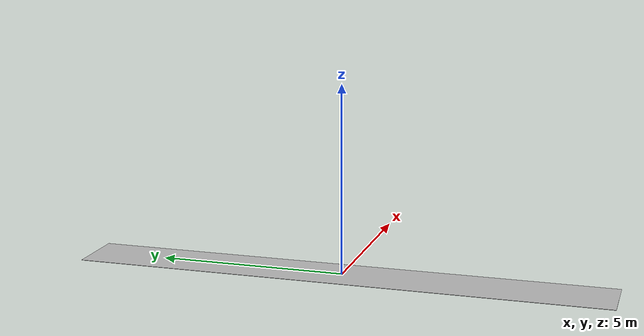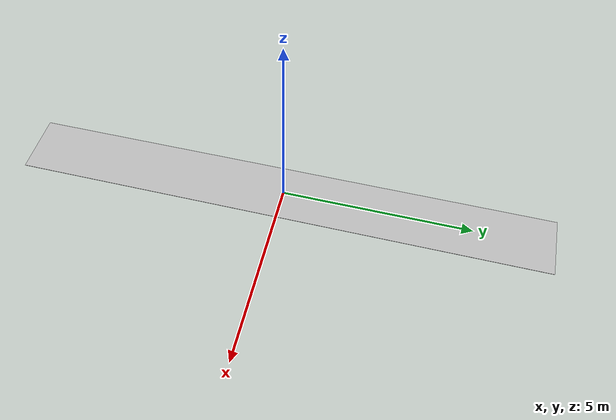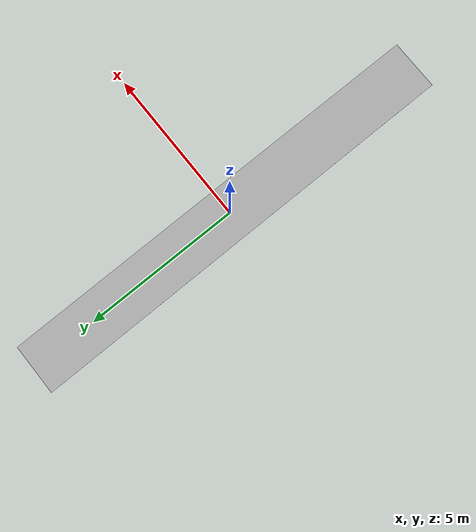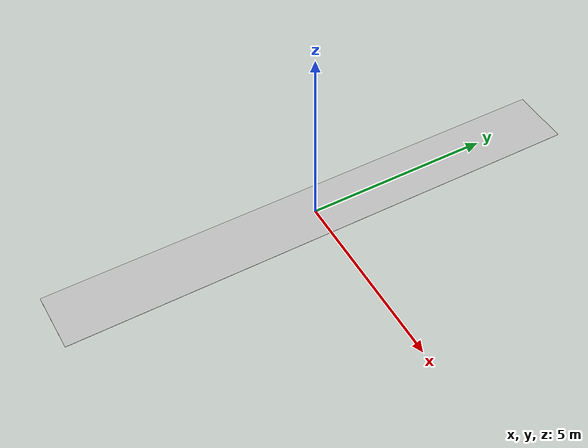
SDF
<?xml version="1.0" ?>
<sdf version='1.4'>
  <model name="street">
      <static>1</static>
      <link name='link'>
        <visual name='visual'>
          <geometry>
            <mesh>
              <uri>model://street/meshes/road.dae</uri>
              <scale>0.05 0.05 0.05</scale>
            </mesh>
          </geometry>
        </visual>
      </link>
  </model>
</sdf>
